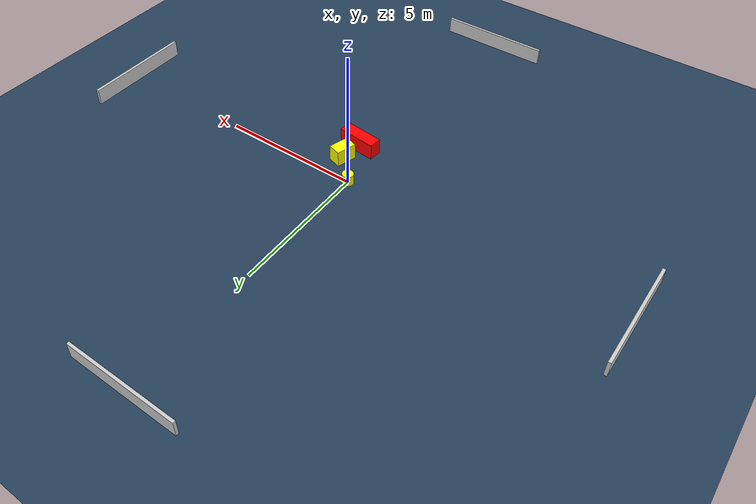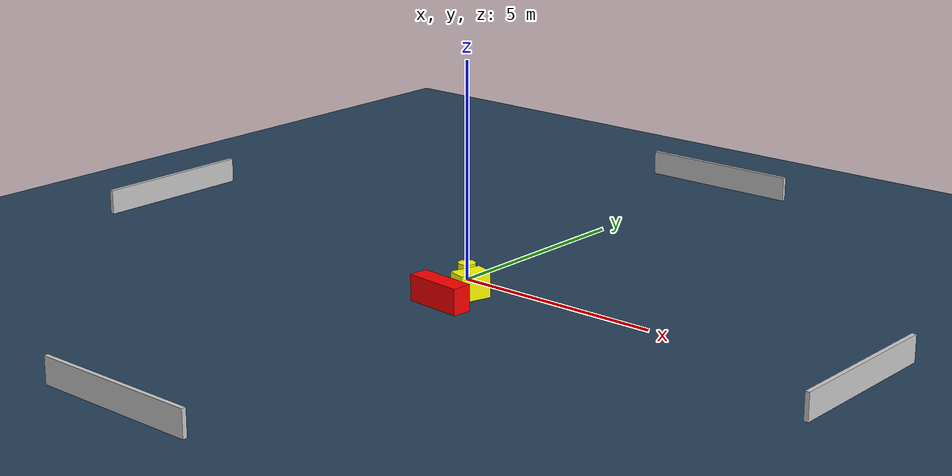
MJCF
<?xml version="1.0" ?>
<mujoco model="generated_environment">
  <option timestep="0.01" integrator="RK4" cone="elliptic"/>
  <default>
    <geom density="1"/>
  </default>
  <asset>
    <texture builtin="gradient" height="3072" name="skybox" rgb1="0.3 0.5 0.7" rgb2="0 0 0" type="skybox" width="512"/>
    <texture builtin="checker" height="300" name="groundplane" rgb1="0.2 0.3 0.4" rgb2="0.1 0.2 0.3" type="2d" width="300"/>
    <material name="groundplane" reflectance="0.2" texrepeat="5 5" texture="groundplane"/>
  </asset>
  <worldbody>
    <light dir="0 0 -1" directional="true" pos="0 0 1.5"/>
    <geom condim="3" friction="0.5 0.005 0.001" material="groundplane" name="floor" pos="0 0 0" size="0 0 0.05" type="plane"/>
    <body name="walls">
      <geom name="wall_1" condim="4" pos="-10.0 0.0 0.3" rgba="0.800000011920929 0.800000011920929 0.800000011920929 1.0" size="0.05 2.0 0.3" type="box"/>
      <geom name="wall_2" condim="4" pos="10.0 0.0 0.3" rgba="0.800000011920929 0.800000011920929 0.800000011920929 1.0" size="0.05 2.0 0.3" type="box"/>
      <geom name="wall_3" condim="4" pos="0.0 -10.0 0.3" rgba="0.800000011920929 0.800000011920929 0.800000011920929 1.0" size="2.0 0.05 0.3" type="box"/>
      <geom name="wall_4" condim="4" pos="0.0 10.0 0.3" rgba="0.800000011920929 0.800000011920929 0.800000011920929 1.0" size="2.0 0.05 0.3" type="box"/>
    </body>
    <body name="robot">
      <joint name="joint_x" type="slide" pos="0 0 0" axis="1 0 0"/>
      <joint name="joint_y" type="slide" pos="0 0 0" axis="0 1 0"/>
      <geom name="robot" type="cylinder" pos="0.0 0.0 0.2" size="0.2 0.2 0.0" mass="5.0" friction="1.0 0.005 0.0001" condim="4" rgba="1.0 1.0 0.0 1.0"/>
    </body>
    <body name="obstacle_1_movable">
      <geom name="obstacle_1_movable" condim="4" pos="0.8551274357440802 -0.8657859752425143 0.3" euler="0 0 253.17634909056764" friction="0.0 0.005 0.001" rgba="1.0 1.0 0.0 1.0" size="0.36608672217285215 0.22825620475698838 0.3" type="box" mass="0.1"/>
      <joint type="free"/>
    </body>
    <body name="obstacle_2_static">
      <geom name="obstacle_2_static" condim="4" pos="0.7094996638083614 -1.6981263247677105 0.3" euler="0 0 264.7026504590796" friction="0.0 0.005 0.001" rgba="1.0 0.0 0.0 1.0" size="0.2279754435962477 0.6901159681655888 0.3" type="box"/>
    </body>
  </worldbody>
  <actuator>
    <motor name="actuator_x" joint="joint_x" gear="1" ctrlrange="-1 1"/>
    <motor name="actuator_y" joint="joint_y" gear="1" ctrlrange="-1 1"/>
  </actuator>
</mujoco>
